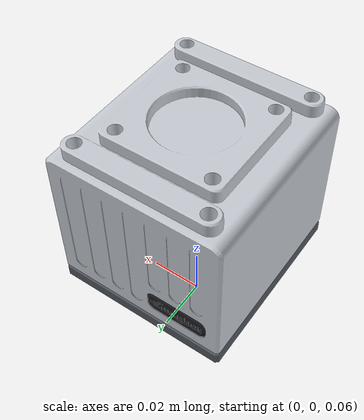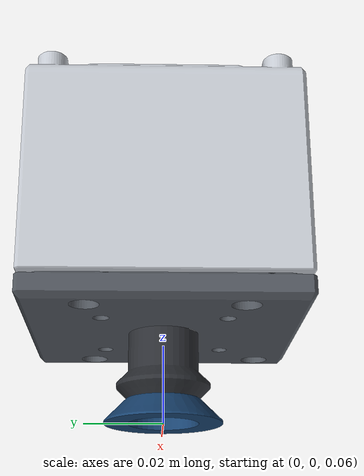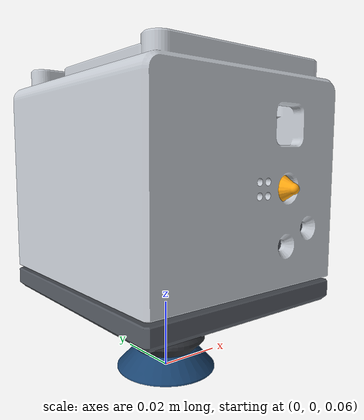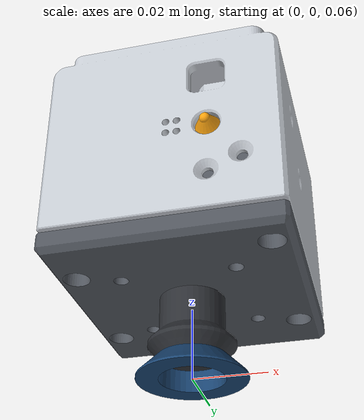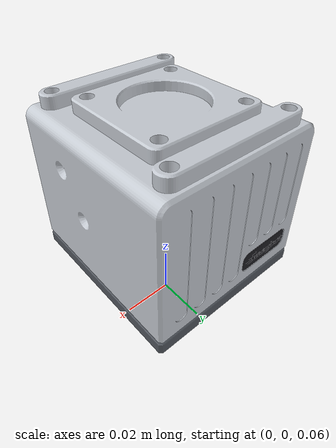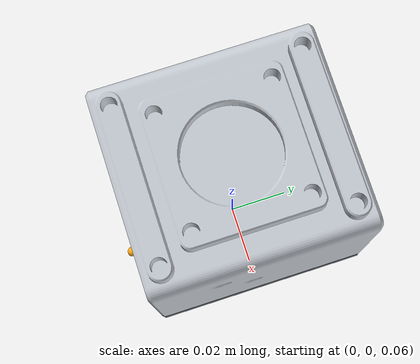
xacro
<?xml version="1.0"?>
<robot xmlns:xacro="http://www.ros.org/wiki/xacro" name="mdpg_1s1_standalone">
  <link name="world"/>
  <xacro:include filename="$(find mdpg_1s1_description)/urdf/mdpg_1s1_macro.xacro"/>
  <xacro:mdpg_1s1_gripper prefix="mdpg_" parent="world">
    <origin xyz="0 0 0.15" rpy="0 0 0"/>
  </xacro:mdpg_1s1_gripper>
</robot>

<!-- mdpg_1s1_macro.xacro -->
<robot xmlns:xacro="http://www.ros.org/wiki/xacro">
  <!-- STEP-derived fixed visual/collision model; dimensions in m. -->
  <!-- Mounting origin is an APPROXIMATION from the CAD housing face; calibrate on real hardware. -->
  <!-- Contact frame is NOMINAL at the lowest CAD surface (-0.090 m). -->
  <xacro:macro name="mdpg_1s1_gripper" params="prefix parent *origin tcp_z:=-0.090">
    <link name="${prefix}base_link">
      <visual name="pump_cover_visual">
        <origin xyz="0 0 0" rpy="0 0 0"/>
        <geometry><mesh filename="package://mdpg_1s1_description/meshes/pump_cover.stl" scale="0.001 0.001 0.001"/></geometry>
        <material name="mdpg_pump_cover"><color rgba="0.78 0.80 0.83 1"/></material>
      </visual>
      <visual name="led_indicator_visual">
        <origin xyz="0 0 0" rpy="0 0 0"/>
        <geometry><mesh filename="package://mdpg_1s1_description/meshes/led_indicator.stl" scale="0.001 0.001 0.001"/></geometry>
        <material name="mdpg_led_indicator"><color rgba="1.0 0.65 0.06 1"/></material>
      </visual>
      <visual name="bottom_cover_visual">
        <origin xyz="0 0 0" rpy="0 0 0"/>
        <geometry><mesh filename="package://mdpg_1s1_description/meshes/bottom_cover.stl" scale="0.001 0.001 0.001"/></geometry>
        <material name="mdpg_bottom_cover"><color rgba="0.32 0.34 0.37 1"/></material>
      </visual>
      <visual name="solid33_visual">
        <origin xyz="0 0 0" rpy="0 0 0"/>
        <geometry><mesh filename="package://mdpg_1s1_description/meshes/solid33.stl" scale="0.001 0.001 0.001"/></geometry>
        <material name="mdpg_solid33"><color rgba="0.12 0.12 0.14 1"/></material>
      </visual>
      <visual name="air_pad_body_visual">
        <origin xyz="0 0 0" rpy="0 0 0"/>
        <geometry><mesh filename="package://mdpg_1s1_description/meshes/air_pad_body.stl" scale="0.001 0.001 0.001"/></geometry>
        <material name="mdpg_air_pad_body"><color rgba="0.18 0.19 0.21 1"/></material>
      </visual>
      <visual name="air_pad_contact_visual">
        <origin xyz="0 0 0" rpy="0 0 0"/>
        <geometry><mesh filename="package://mdpg_1s1_description/meshes/air_pad_contact.stl" scale="0.001 0.001 0.001"/></geometry>
        <material name="mdpg_air_pad_contact"><color rgba="0.10 0.27 0.45 1"/></material>
      </visual>
      <!-- Approximate collisions only; do not use these for quantitative contact studies. -->
      <collision name="housing_collision">
        <origin xyz="0 0 -0.0335" rpy="0 0 0"/>
        <geometry><box size="0.065 0.077 0.067"/></geometry>
      </collision>
      <collision name="air_pad_collision">
        <origin xyz="0 0 -0.0785" rpy="0 0 0"/>
        <geometry><cylinder radius="0.015" length="0.023"/></geometry>
      </collision>
    </link>
    <joint name="${prefix}mount_joint" type="fixed">
      <parent link="${parent}"/>
      <child link="${prefix}base_link"/>
      <xacro:insert_block name="origin"/>
    </joint>
    <link name="${prefix}tcp"/>
    <joint name="${prefix}tcp_joint" type="fixed">
      <parent link="${prefix}base_link"/>
      <child link="${prefix}tcp"/>
      <origin xyz="0 0 ${tcp_z}" rpy="0 0 0"/>
    </joint>
  </xacro:macro>
</robot>
